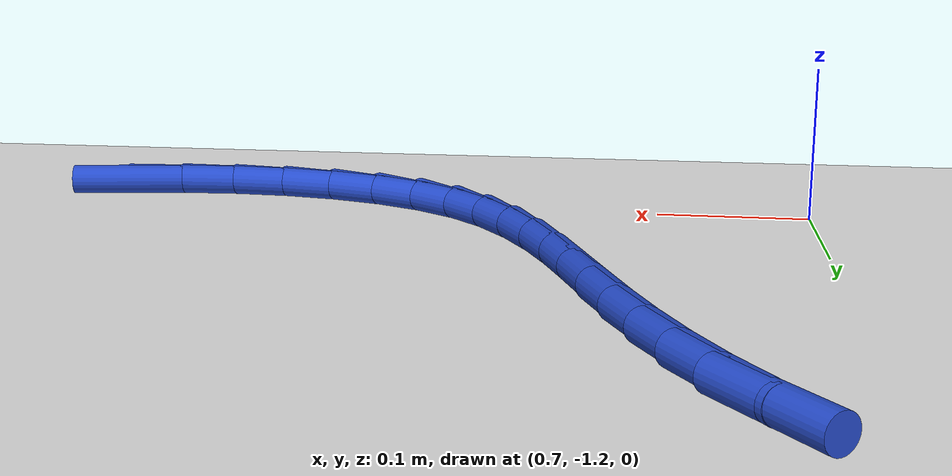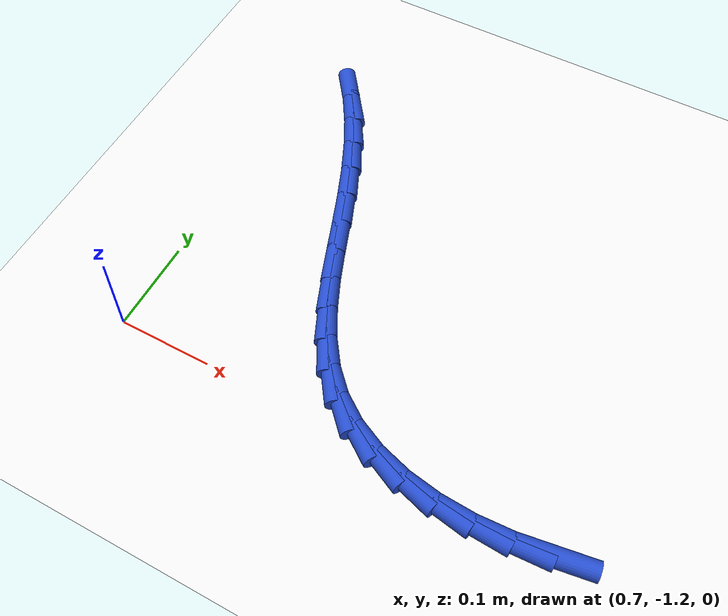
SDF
<sdf version="1.6">
 <world name="default">
  <model name="ground_plane">
   <static>1</static>
   <link name="link">
    <collision name="collision">
     <geometry><plane><normal>0 0 1</normal><size>100 100</size></plane></geometry>
     <surface><friction><ode><mu>100</mu><mu2>50</mu2></ode></friction></surface>
    </collision>
    <visual name="visual">
     <cast_shadows>0</cast_shadows>
     <geometry><plane><normal>0 0 1</normal><size>100 100</size></plane></geometry>
     <material>
      <script><uri>file://media/materials/scripts/gazebo.material</uri><name>Gazebo/WhiteGlow</name></script>
     </material>
    </visual>
   </link>
  </model>
  <model name="line">
   <link name="link_166">
    <pose>1.173405741569408 -1.2185226775835987 0.01 0 1.57 0.15235946941308404</pose>
    <collision name="collision">
     <geometry><cylinder><radius>0.01</radius><length>0.08</length></cylinder></geometry>
    </collision>
    <visual name="visual">
     <material>
      <script><name>Gazebo/Blue</name><uri>file://media/materials/scripts/gazebo.material</uri></script>
     </material>
     <geometry><cylinder><radius>0.01</radius><length>0.08</length></cylinder></geometry>
    </visual>
   </link>
   <link name="link_167">
    <pose>1.1355094881654835 -1.2243416263568214 0.01 0 1.57 0.05075939097712565</pose>
    <collision name="collision">
     <geometry><cylinder><radius>0.01</radius><length>0.08</length></cylinder></geometry>
    </collision>
    <visual name="visual">
     <material>
      <script><name>Gazebo/Blue</name><uri>file://media/materials/scripts/gazebo.material</uri></script>
     </material>
     <geometry><cylinder><radius>0.01</radius><length>0.08</length></cylinder></geometry>
    </visual>
   </link>
   <link name="link_168">
    <pose>1.0975768829945283 -1.226268717638191 0.01 0 1.57 -0.05584242113434792</pose>
    <collision name="collision">
     <geometry><cylinder><radius>0.01</radius><length>0.08</length></cylinder></geometry>
    </collision>
    <visual name="visual">
     <material>
      <script><name>Gazebo/Blue</name><uri>file://media/materials/scripts/gazebo.material</uri></script>
     </material>
     <geometry><cylinder><radius>0.01</radius><length>0.08</length></cylinder></geometry>
    </visual>
   </link>
   <link name="link_169">
    <pose>1.0603728412049742 -1.224188991629905 0.01 0 1.57 -0.1719453709419554</pose>
    <collision name="collision">
     <geometry><cylinder><radius>0.01</radius><length>0.08</length></cylinder></geometry>
    </collision>
    <visual name="visual">
     <material>
      <script><name>Gazebo/Blue</name><uri>file://media/materials/scripts/gazebo.material</uri></script>
     </material>
     <geometry><cylinder><radius>0.01</radius><length>0.08</length></cylinder></geometry>
    </visual>
   </link>
   <link name="link_170">
    <pose>1.0246622779452548 -1.2179874885341608 0.01 0 1.57 -0.30246097118097154</pose>
    <collision name="collision">
     <geometry><cylinder><radius>0.01</radius><length>0.08</length></cylinder></geometry>
    </collision>
    <visual name="visual">
     <material>
      <script><name>Gazebo/Blue</name><uri>file://media/materials/scripts/gazebo.material</uri></script>
     </material>
     <geometry><cylinder><radius>0.01</radius><length>0.08</length></cylinder></geometry>
    </visual>
   </link>
   <link name="link_171">
    <pose>0.9912101083638024 -1.2075492485531574 0.01 0 1.57 -0.45242516265691124</pose>
    <collision name="collision">
     <geometry><cylinder><radius>0.01</radius><length>0.08</length></cylinder></geometry>
    </collision>
    <visual name="visual">
     <material>
      <script><name>Gazebo/Blue</name><uri>file://media/materials/scripts/gazebo.material</uri></script>
     </material>
     <geometry><cylinder><radius>0.01</radius><length>0.08</length></cylinder></geometry>
    </visual>
   </link>
   <link name="link_172">
    <pose>0.9607812476090489 -1.1927593118890907 0.01 0 1.57 -0.6258140412416454</pose>
    <collision name="collision">
     <geometry><cylinder><radius>0.01</radius><length>0.08</length></cylinder></geometry>
    </collision>
    <visual name="visual">
     <material>
      <script><name>Gazebo/Blue</name><uri>file://media/materials/scripts/gazebo.material</uri></script>
     </material>
     <geometry><cylinder><radius>0.01</radius><length>0.08</length></cylinder></geometry>
    </visual>
   </link>
   <link name="link_173">
    <pose>0.9341384299707165 -1.173503936108707 0.01 0 1.57 -0.8084985487384758</pose>
    <collision name="collision">
     <geometry><cylinder><radius>0.01</radius><length>0.08</length></cylinder></geometry>
    </collision>
    <visual name="visual">
     <material>
      <script><name>Gazebo/Blue</name><uri>file://media/materials/scripts/gazebo.material</uri></script>
     </material>
     <geometry><cylinder><radius>0.01</radius><length>0.08</length></cylinder></geometry>
    </visual>
   </link>
   <link name="link_174">
    <pose>0.9116112381385092 -1.1499111658323742 0.01 0 1.57 -0.9614220424495168</pose>
    <collision name="collision">
     <geometry><cylinder><radius>0.01</radius><length>0.08</length></cylinder></geometry>
    </collision>
    <visual name="visual">
     <material>
      <script><name>Gazebo/Blue</name><uri>file://media/materials/scripts/gazebo.material</uri></script>
     </material>
     <geometry><cylinder><radius>0.01</radius><length>0.08</length></cylinder></geometry>
    </visual>
   </link>
   <link name="link_175">
    <pose>0.8925767927621321 -1.1226407140162704 0.01 0 1.57 -1.0763352945590057</pose>
    <collision name="collision">
     <geometry><cylinder><radius>0.01</radius><length>0.08</length></cylinder></geometry>
    </collision>
    <visual name="visual">
     <material>
      <script><name>Gazebo/Blue</name><uri>file://media/materials/scripts/gazebo.material</uri></script>
     </material>
     <geometry><cylinder><radius>0.01</radius><length>0.08</length></cylinder></geometry>
    </visual>
   </link>
   <link name="link_176">
    <pose>0.8762854757396713 -1.092423039723325 0.01 0 1.57 -1.155601166867579</pose>
    <collision name="collision">
     <geometry><cylinder><radius>0.01</radius><length>0.08</length></cylinder></geometry>
    </collision>
    <visual name="visual">
     <material>
      <script><name>Gazebo/Blue</name><uri>file://media/materials/scripts/gazebo.material</uri></script>
     </material>
     <geometry><cylinder><radius>0.01</radius><length>0.08</length></cylinder></geometry>
    </visual>
   </link>
   <link name="link_177">
    <pose>0.8619876689692123 -1.0599886020164666 0.01 0 1.57 -1.2034305288407234</pose>
    <collision name="collision">
     <geometry><cylinder><radius>0.01</radius><length>0.08</length></cylinder></geometry>
    </collision>
    <visual name="visual">
     <material>
      <script><name>Gazebo/Blue</name><uri>file://media/materials/scripts/gazebo.material</uri></script>
     </material>
     <geometry><cylinder><radius>0.01</radius><length>0.08</length></cylinder></geometry>
    </visual>
   </link>
   <link name="link_178">
    <pose>0.8489337543488403 -1.0260678599586233 0.01 0 1.57 -1.2233001135350199</pose>
    <collision name="collision">
     <geometry><cylinder><radius>0.01</radius><length>0.08</length></cylinder></geometry>
    </collision>
    <visual name="visual">
     <material>
      <script><name>Gazebo/Blue</name><uri>file://media/materials/scripts/gazebo.material</uri></script>
     </material>
     <geometry><cylinder><radius>0.01</radius><length>0.08</length></cylinder></geometry>
    </visual>
   </link>
   <link name="link_179">
    <pose>0.8363741137766415 -0.9913912726127253 0.01 0 1.57 -1.21704377544747</pose>
    <collision name="collision">
     <geometry><cylinder><radius>0.01</radius><length>0.08</length></cylinder></geometry>
    </collision>
    <visual name="visual">
     <material>
      <script><name>Gazebo/Blue</name><uri>file://media/materials/scripts/gazebo.material</uri></script>
     </material>
     <geometry><cylinder><radius>0.01</radius><length>0.08</length></cylinder></geometry>
    </visual>
   </link>
   <link name="link_180">
    <pose>0.8235591291507013 -0.9566892990417014 0.01 0 1.57 -1.1873905840723784</pose>
    <collision name="collision">
     <geometry><cylinder><radius>0.01</radius><length>0.08</length></cylinder></geometry>
    </collision>
    <visual name="visual">
     <material>
      <script><name>Gazebo/Blue</name><uri>file://media/materials/scripts/gazebo.material</uri></script>
     </material>
     <geometry><cylinder><radius>0.01</radius><length>0.08</length></cylinder></geometry>
    </visual>
   </link>
   <link name="link_181">
    <pose>0.8098220212571394 -0.922633211630959 0.01 0 1.57 -1.144189354316006</pose>
    <collision name="collision">
     <geometry><cylinder><radius>0.01</radius><length>0.08</length></cylinder></geometry>
    </collision>
    <visual name="visual">
     <material>
      <script><name>Gazebo/Blue</name><uri>file://media/materials/scripts/gazebo.material</uri></script>
     </material>
     <geometry><cylinder><radius>0.01</radius><length>0.08</length></cylinder></geometry>
    </visual>
   </link>
   <link name="link_182">
    <pose>0.7948322940703993 -0.8896540153613651 0.01 0 1.57 -1.0890143663335772</pose>
    <collision name="collision">
     <geometry><cylinder><radius>0.01</radius><length>0.08</length></cylinder></geometry>
    </collision>
    <visual name="visual">
     <material>
      <script><name>Gazebo/Blue</name><uri>file://media/materials/scripts/gazebo.material</uri></script>
     </material>
     <geometry><cylinder><radius>0.01</radius><length>0.08</length></cylinder></geometry>
    </visual>
   </link>
   <link name="link_183">
    <pose>0.7783447725356775 -0.8581217551393415 0.01 0 1.57 -1.0205053616392334</pose>
    <collision name="collision">
     <geometry><cylinder><radius>0.01</radius><length>0.08</length></cylinder></geometry>
    </collision>
    <visual name="visual">
     <material>
      <script><name>Gazebo/Blue</name><uri>file://media/materials/scripts/gazebo.material</uri></script>
     </material>
     <geometry><cylinder><radius>0.01</radius><length>0.08</length></cylinder></geometry>
    </visual>
   </link>
   <link name="link_184">
    <pose>0.7601142816081856 -0.8284064758641524 0.01 0 1.57 -0.9373096963744144</pose>
    <collision name="collision">
     <geometry><cylinder><radius>0.01</radius><length>0.08</length></cylinder></geometry>
    </collision>
    <visual name="visual">
     <material>
      <script><name>Gazebo/Blue</name><uri>file://media/materials/scripts/gazebo.material</uri></script>
     </material>
     <geometry><cylinder><radius>0.01</radius><length>0.08</length></cylinder></geometry>
    </visual>
   </link>
  </model>
 </world>
</sdf>
